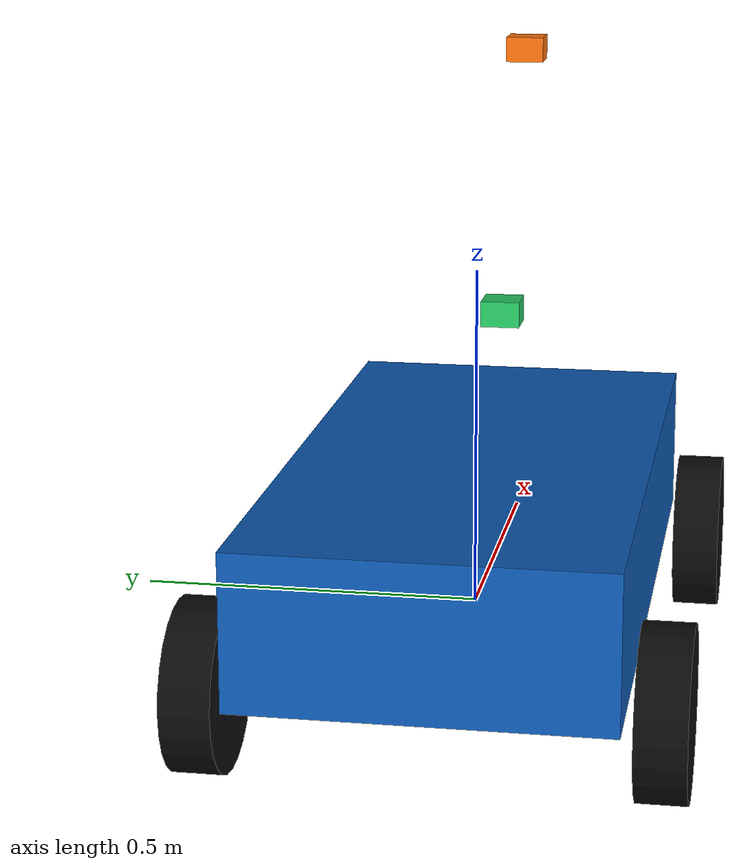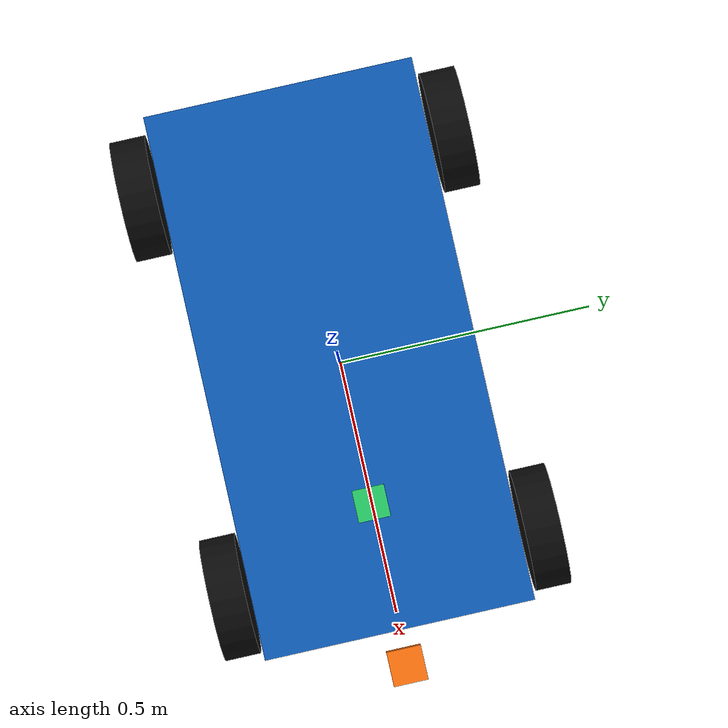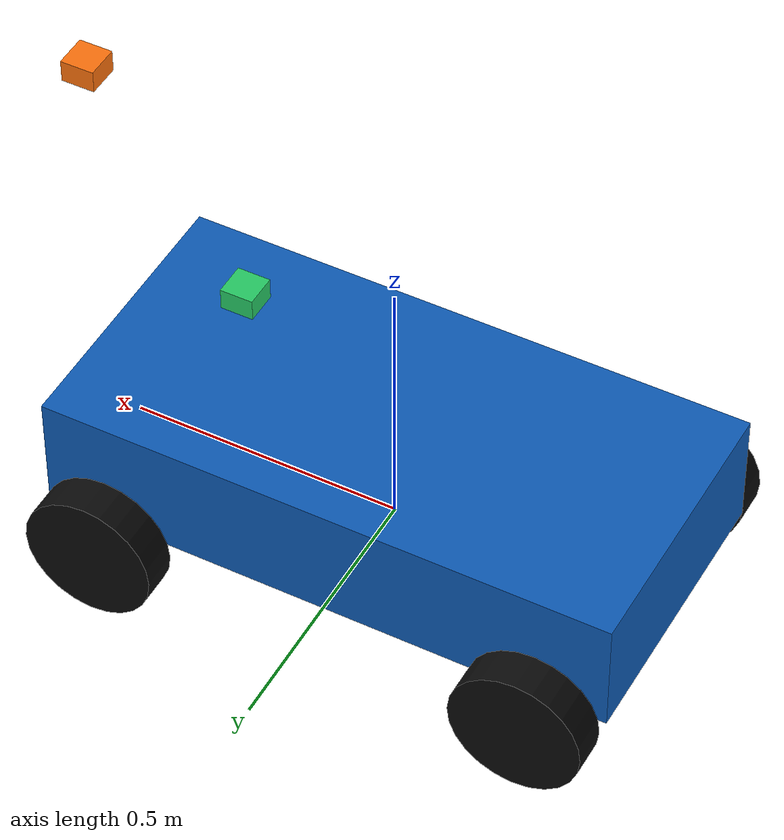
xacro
<?xml version="1.0"?>
<robot xmlns:xacro="http://www.ros.org/wiki/xacro" name="course_ackermann">
  <!-- SI units; x forward, y left, z up. Dimensions from course kit v1-w08. -->
  <xacro:arg name="wheelbase" default="0.8"/>
  <xacro:arg name="track" default="0.62"/>
  <xacro:arg name="wheel_radius" default="0.12"/>
  <xacro:property name="wheelbase" value="$(arg wheelbase)"/>
  <xacro:property name="track" value="$(arg track)"/>
  <xacro:property name="radius" value="$(arg wheel_radius)"/>
  <xacro:property name="width" value="0.07"/>
  <xacro:property name="body_length" value="1.05"/>
  <xacro:property name="body_width" value="0.52"/>
  <xacro:property name="body_height" value="0.22"/>
  <material name="body_blue"><color rgba="0.05 0.36 0.72 1"/></material>
  <material name="rubber"><color rgba="0.04 0.04 0.04 1"/></material>
  <material name="sensor_orange"><color rgba="1 0.45 0.05 1"/></material>
  <material name="sensor_green"><color rgba="0.15 0.8 0.4 1"/></material>
  <link name="base_link">
    <visual><origin xyz="0 0 0.12"/><geometry><box size="${body_length} ${body_width} ${body_height}"/></geometry><material name="body_blue"/></visual>
    <collision><origin xyz="0 0 0.12"/><geometry><box size="${body_length} ${body_width} ${body_height}"/></geometry></collision>
    <inertial><origin xyz="0 0 0.12"/><mass value="12"/>
      <inertia ixx="${12*(body_width**2+body_height**2)/12}" ixy="0" ixz="0"
               iyy="${12*(body_length**2+body_height**2)/12}" iyz="0"
               izz="${12*(body_length**2+body_width**2)/12}"/>
    </inertial>
  </link>
  <xacro:macro name="wheel" params="name parent x y">
    <link name="${name}_wheel">
      <!-- Rotate cylinder geometry, keep link/joint axes in REP-103 orientation. -->
      <visual><origin rpy="${pi/2} 0 0"/><geometry><cylinder radius="${radius}" length="${width}"/></geometry><material name="rubber"/></visual>
      <collision><origin rpy="${pi/2} 0 0"/><geometry><cylinder radius="${radius}" length="${width}"/></geometry></collision>
      <inertial><mass value="0.8"/>
        <inertia ixx="${0.8*(3*radius**2+width**2)/12}" ixy="0" ixz="0"
                 iyy="${0.8*radius**2/2}" iyz="0" izz="${0.8*(3*radius**2+width**2)/12}"/>
      </inertial>
    </link>
    <joint name="${name}_wheel_joint" type="continuous">
      <parent link="${parent}"/><child link="${name}_wheel"/>
      <origin xyz="${x} ${y} 0"/><axis xyz="0 1 0"/>
    </joint>
  </xacro:macro>
  <xacro:macro name="front" params="side sign">
    <link name="front_${side}_knuckle">
      <visual><geometry><box size="0.04 0.04 0.04"/></geometry><material name="rubber"/></visual>
      <collision><geometry><box size="0.04 0.04 0.04"/></geometry></collision>
      <inertial><mass value="0.2"/><inertia ixx="0.001" ixy="0" ixz="0" iyy="0.001" iyz="0" izz="0.001"/></inertial>
    </link>
    <joint name="front_${side}_steering_joint" type="revolute">
      <parent link="base_link"/><child link="front_${side}_knuckle"/>
      <origin xyz="${wheelbase/2} ${sign*track/2} 0"/><axis xyz="0 0 1"/>
      <limit lower="-0.55" upper="0.55" effort="25" velocity="1.5"/>
    </joint>
    <xacro:wheel name="front_${side}" parent="front_${side}_knuckle" x="0" y="0"/>
  </xacro:macro>
  <xacro:front side="left" sign="${1}"/>
  <xacro:front side="right" sign="${-1}"/>
  <xacro:wheel name="rear_left" parent="base_link" x="${-wheelbase/2}" y="${track/2}"/>
  <xacro:wheel name="rear_right" parent="base_link" x="${-wheelbase/2}" y="${-track/2}"/>
  <xacro:macro name="sensor" params="name parent color">
    <link name="${name}_link">
      <visual><geometry><box size="0.06 0.06 0.04"/></geometry><material name="${color}"/></visual>
      <collision><geometry><box size="0.06 0.06 0.04"/></geometry></collision>
      <inertial><mass value="${0.1/3}"/>
        <inertia ixx="0.000333333333" ixy="0" ixz="0" iyy="0.000333333333" iyz="0" izz="0.000333333333"/>
      </inertial>
    </link>
    <joint name="${name}_joint" type="fixed">
      <parent link="${parent}"/><child link="${name}_link"/>
      <origin xyz="0.28 0 0.38" rpy="0 0 0"/>
    </joint>
  </xacro:macro>
  <!-- Kit sensors share an origin; boxes are symbolic visual/collision geometry. -->
  <xacro:sensor name="camera" parent="base_link" color="sensor_green"/>
  <xacro:sensor name="lidar" parent="camera_link" color="sensor_orange"/>
  <xacro:sensor name="imu" parent="base_link" color="sensor_green"/>
</robot>
